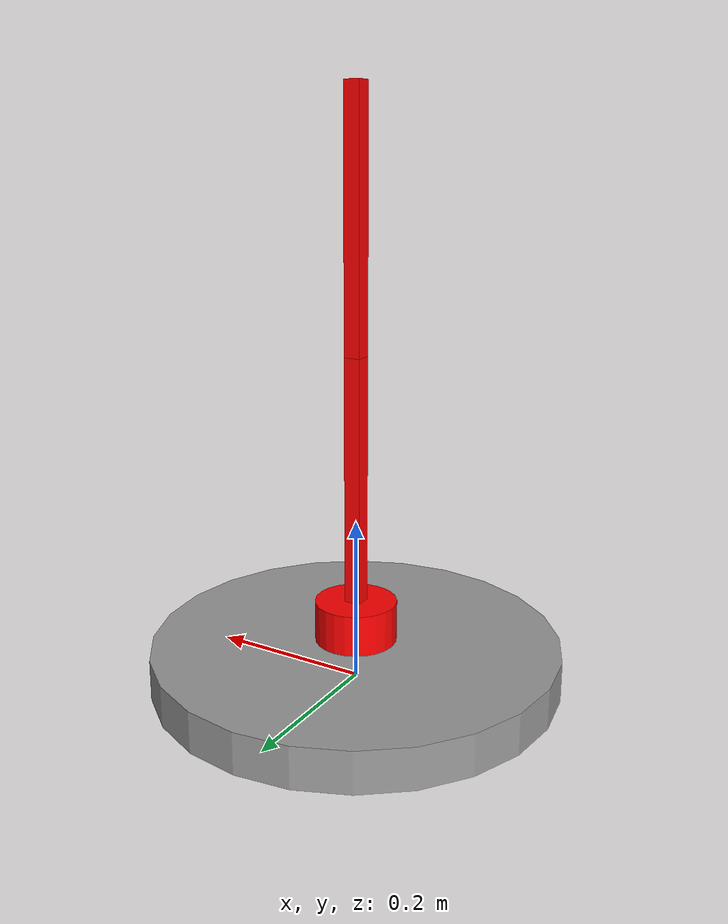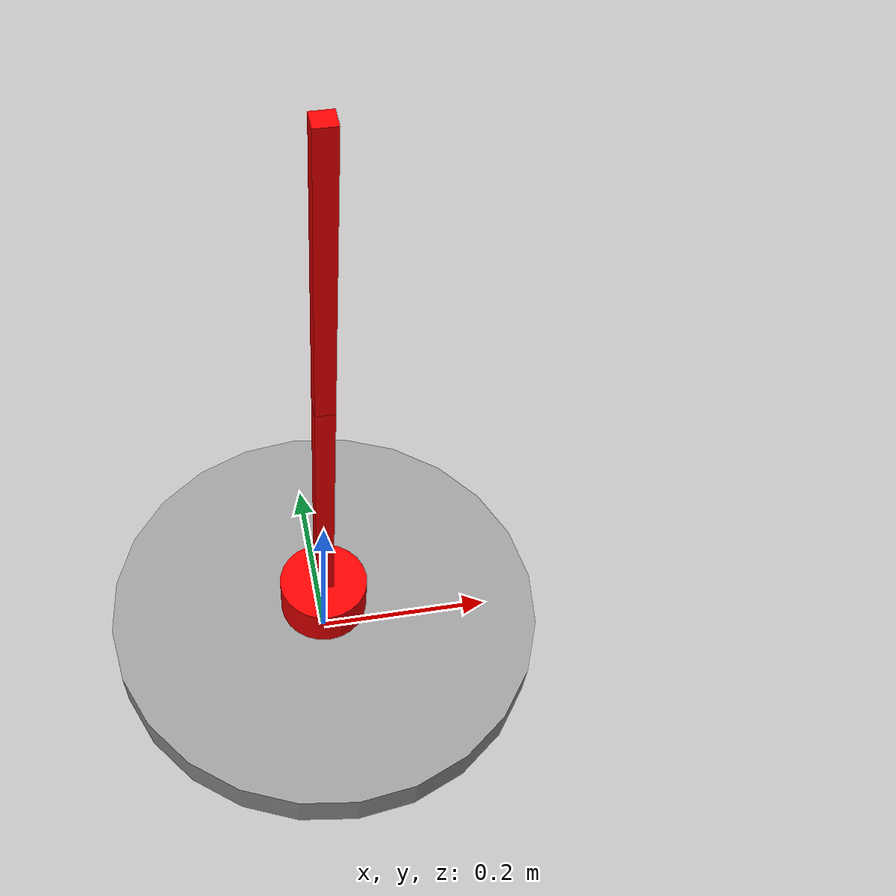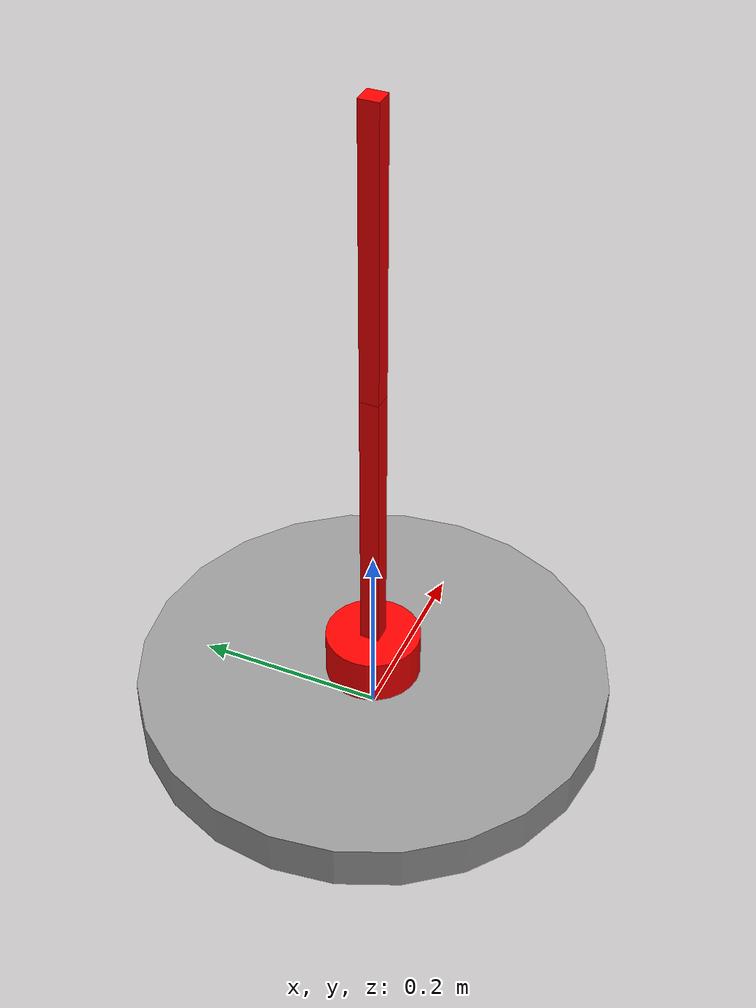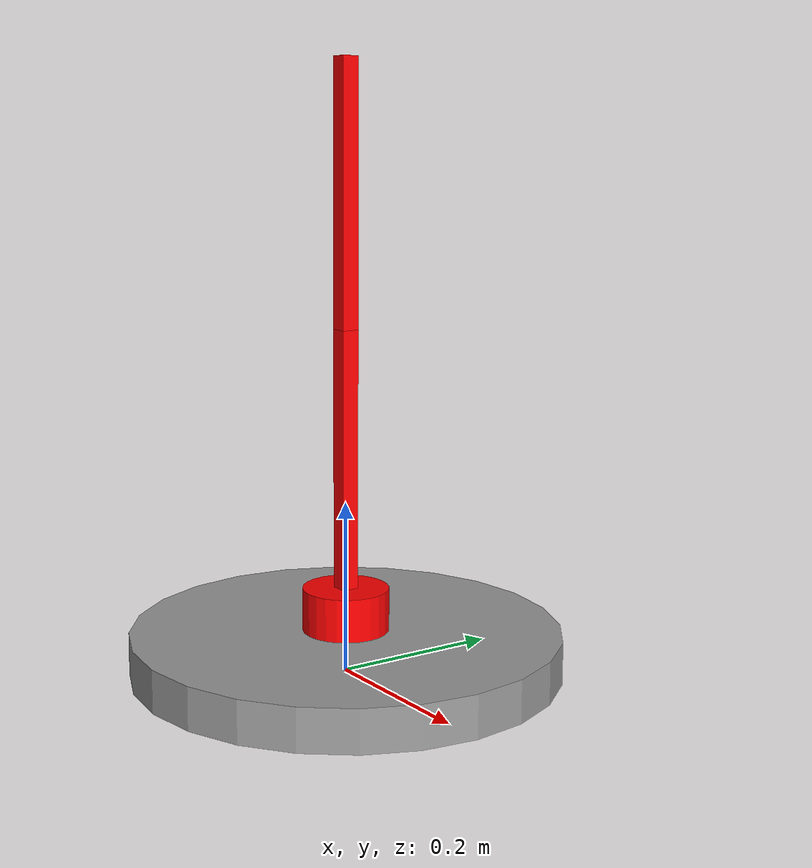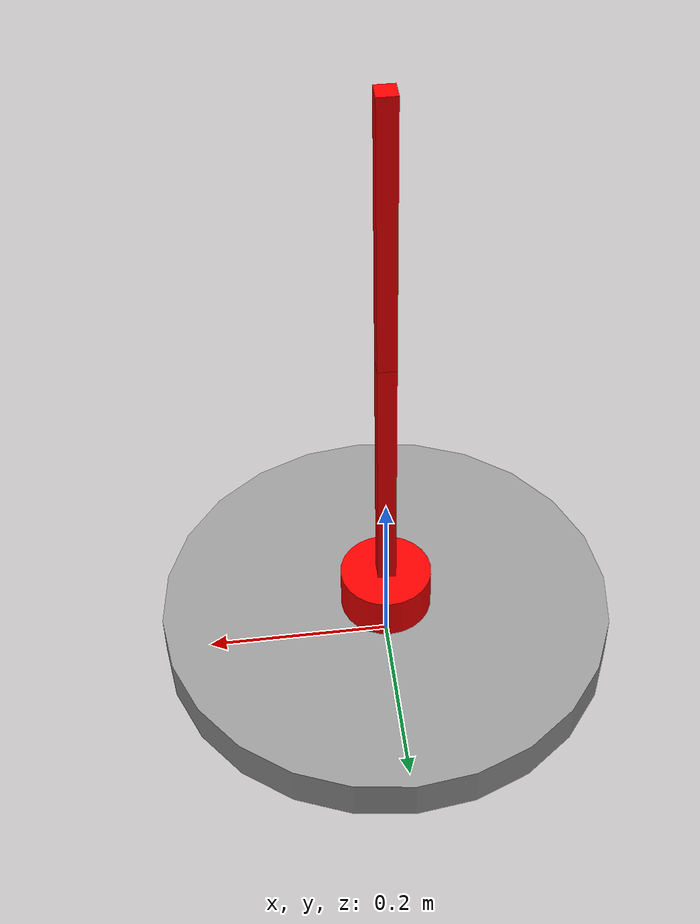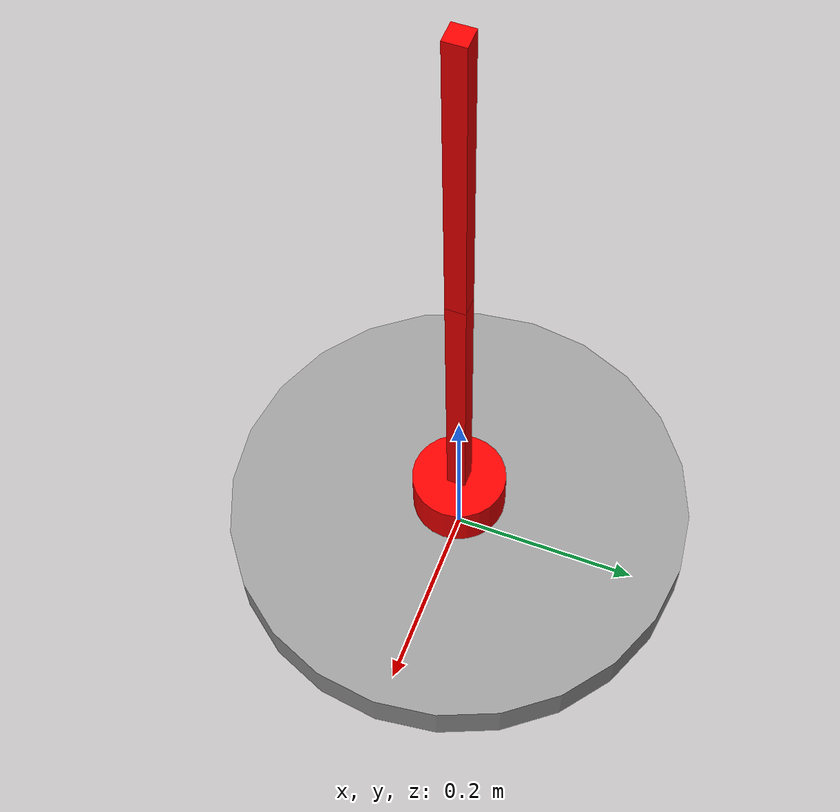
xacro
<?xml version="1.0"?>
<robot name="deliverybot" xmlns:xacro="http://wiki.ros.org/xacro">

    <!-- basic shapes -->
    <xacro:include filename="$(find urdf_basic_shapes)/urdf/basic_shapes.urdf.xacro"/>

    <link name="base_footprint"/>

    <!--cylinder base_link -->
    <xacro:cylinder_shape name="base_link" r="0.25" h="0.05" ori="0 0 .025" rpy="0 0 0" rgb="Grey" m="10" friction="${standard_friction}"/>
    <joint name="base_joint" type="fixed">
        <parent link="base_footprint"/>
        <child link="base_link"/>
        <origin xyz="0 0 0.0" rpy="0 0 0"/>
    </joint>

    <!--cylinder rot_base -->
    <xacro:cylinder_shape name="rot_base" r="0.05" h="0.05" ori="0 0 .025" rpy="0 0 0" rgb="Red" m="1" friction="${standard_friction}"/>
    <joint name="rot_base_joint" type="continuous">
        <parent link="base_link"/>
        <child link="rot_base"/>
        <axis xyz="0 0 1"/>
        <origin xyz="0 0 0.05" rpy="0 0 0"/>
    </joint>

    <!-- cubeical upper_arm -->
    <xacro:cube name="arm1" x="0.02" y="0.02" z="0.3" ori="0.0 0.0 0.15" rpy="0 0 0" rgb="Red" m=".1" friction="${standard_friction}"/>
    <joint name="arm1_joint" type="continuous">
        <parent link="rot_base"/>
        <child link="arm1"/>
        <axis xyz="0 1 0"/>
        <limit lower="0"/>
        <origin xyz="0 0 0.05" rpy="0 0 0"/>
    </joint>

    <!-- cubeical lower_arm -->
    <xacro:cube name="arm2" x="0.02" y="0.02" z="0.3" ori="0.0 0.0 0.15" rpy="0 0 0" rgb="Red" m=".1" friction="${standard_friction}"/>
    <joint name="arm2_joint" type="continuous">
        <parent link="arm1"/>
        <child link="arm2"/>
        <axis xyz="0 1 0"/>
        <origin xyz="0 0 0.3" rpy="0 0 0"/>
    </joint>

</robot>

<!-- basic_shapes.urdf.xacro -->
<robot name="basic_shapes" xmlns:xacro="http://wiki.ros.org/xacro">
  <!-- basic inertia -->
  <xacro:include filename="$(find urdf_basic_shapes)/urdf/inertia.urdf.xacro"/>
  <!-- basic material -->
  <xacro:include filename="$(find urdf_basic_shapes)/urdf/material.urdf.xacro"/>
  <!-- basic shapes gazebo-->
  <xacro:include filename="$(find urdf_basic_shapes)/urdf/basic_shapes.gazebo.xacro"/>

  <!-- constants -->
  <xacro:property name="update_rate" value="50" />

  <xacro:macro name="cube" params="name x y z ori rpy rgb m friction">
    <link name="${name}">
        <visual>
          <origin xyz="${ori}" rpy="${rpy}"/>
          <geometry>
              <box size="${x} ${y} ${z}"/>
          </geometry>
          <material name="${rgb}"/>
        </visual>
        <collision>
        <origin xyz="${ori}" rpy="${rpy}" />
        <geometry>
            <box size="${x} ${y} ${z}" />
        </geometry>
        </collision>
        <xacro:solid_cuboid_inertia m="${m}" h="${y}" d="${z}" w="${x}"/>
    </link>
    <xacro:gazebo_params name="${name}" rgb="${rgb}" friction="${friction}"/>
  </xacro:macro>

  <xacro:macro name="ball" params="name r ori rpy rgb m friction">
    <link name="${name}">
        <visual>
          <origin xyz="${ori}" rpy="${rpy}"/>
          <geometry>
              <sphere radius="${r}"/>
          </geometry>
          <material name="${rgb}"/>
        </visual>
        <collision>
        <origin xyz="${ori}" rpy="${rpy}" />
        <geometry>
            <sphere radius="${r}" />
        </geometry>
        </collision>
        <xacro:solid_sphere_inertia m="${m}" r="${r}"/>
    </link>
    <xacro:gazebo_params name="${name}" rgb="${rgb}" friction="${friction}"/>
  </xacro:macro>

  <xacro:macro name="cylinder_shape" params="name r h ori rpy rgb m friction">
    <link name="${name}">
        <visual>
          <origin xyz="${ori}" rpy="${rpy}"/>
          <geometry>
              <cylinder radius="${r}" length="${h}"/>
          </geometry>
          <material name="${rgb}"/>
        </visual>
        <collision>
        <origin xyz="${ori}" rpy="${rpy}" />
        <geometry>
            <cylinder radius="${r}" length="${h}" />
        </geometry>
        </collision>
        <xacro:solid_cylinder_inertia m="${m}" r="${r}" h="${h}"/>
    </link>
    <xacro:gazebo_params name="${name}" rgb="${rgb}" friction="${friction}"/>
  </xacro:macro>

  <xacro:macro name="wheel" params="name r h ori rpy rgb m friction">
    <link name="${name}">
        <visual>
          <origin xyz="${ori}" rpy="${rpy}"/>
          <geometry>
              <cylinder radius="${r}" length="${h}"/>
          </geometry>
          <material name="${rgb}"/>
        </visual>
        <collision>
        <origin xyz="${ori}" rpy="${rpy}" />
        <geometry>
            <sphere radius="${r}" />   <!--use shpere here to reduce the point of contract to a infinit small point-->
        </geometry>
        </collision>
        <xacro:solid_cylinder_inertia m="${m}" r="${r}" h="${h}"/>
    </link>
    <xacro:gazebo_params name="${name}" rgb="${rgb}" friction="${friction}"/>
  </xacro:macro>

</robot>

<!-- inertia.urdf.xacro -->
<robot xmlns:xacro="http://wiki.ros.org/xacro">
  <!-- source en.wikipedia.org/wiki/List_of_moments_of_inertia-->

  <!-- TODO Solid sphere of radius r and mass m-->
  <xacro:macro name="solid_sphere_inertia" params="m r">
  <inertial>
      <mass value="${m}" />
    <inertia  ixx="${(2*r*r*m)/5}" ixy = "0" ixz = "0"
              iyy="${(2*r*r*m)/5}" iyz = "0"
              izz="${(2*r*r*m)/5}"
     />
     </inertial>
  </xacro:macro>

  <!-- TODO Hollow sphere of radius r and mass m-->
  <xacro:macro name="hollow_sphere_inertia" params="m r">
  <inertial>
      <mass value="${m}" />
    <inertia  ixx="${(2*r*r*m)/3}" ixy = "0" ixz = "0"
              iyy="${(2*r*r*m)/3}" iyz = "0"
              izz="${(2*r*r*m)/3}"
     />
     </inertial>
  </xacro:macro>

  <!-- TODO Solid ellipsoid of semi-axes a, b, c and mass m-->
  <xacro:macro name="ellipsoid_semi_axes_inertia" params="a b c m r">
  <inertial>
      <mass value="${m}" />
    <inertia  ixx="${(m*(b*b+c*c))/5}" ixy = "0" ixz = "0"
              iyy="${(m*(a*a+c*c))/5}" iyz = "0"
              izz="${(m*(a*a+b*b))/5}"
     />
     </inertial>
  </xacro:macro>

  <!-- TODO Right circular cone with radius r, height h and mass m, about the apex -->
  <xacro:macro name="right_circular_cone_inertia" params="m r h">
  <inertial>
      <mass value="${m}" />
    <inertia  ixx="${((3*m*(h*h))/5)+((3*m*(r*r))/20)}" ixy = "0" ixz = "0"
              iyy="${((3*m*(h*h))/5)+((3*m*(r*r))/20)}" iyz = "0"
              izz="${(3*m*(r*r))/10}"
     />
     </inertial>
  </xacro:macro>

  <!-- TODO Solid cuboid of width w, height h, depth d, and mass m -->
  <!-- yes, axis in solid_cuboid_inertia are changed, w relates to X axis, d to Z axis, and h to Y axis -->
  <!-- Keep this comment -->
  <xacro:macro name="solid_cuboid_inertia" params="m h d w">
    <inertial>
      <mass value="${m}" />
        <inertia  ixx="${(m*(h*h+d*d))/12}" ixy = "0" ixz = "0"
                iyy="${(m*(w*w+d*d))/12}" iyz = "0"
                izz="${(m*(w*w+h*h))/12}"
        />
    </inertial>
  </xacro:macro>

  <!-- TODO Solid cylinder of radius r, height h and mass m -->
  <xacro:macro name="solid_cylinder_inertia" params="m r h">
  <inertial>
      <mass value="${m}" />
    <inertia  ixx="${m*(3*r*r+h*h)/12}" ixy = "0" ixz = "0"
              iyy="${m*(3*r*r+h*h)/12}" iyz = "0"
              izz="${m*r*r/2}"
     />
     </inertial>
  </xacro:macro>

    <!-- TODO Thick-walled cylindrical tube with open ends, of inner radius r1, outer radius r2, length h and mass m -->
    <xacro:macro name="thick_walled_cylinder_inertia" params="m r1 r2 h">
    <inertial>
      <mass value="${m}" />
    <inertia  ixx="${m*((3*(r1*r1+r2*r2))+(h*h))/12}" ixy = "0" ixz = "0"
              iyy="${m*((3*(r1*r1+r2*r2))+(h*h))/12}" iyz = "0"
              izz="${m*(r1*r1+r2*r2)/2}"
     />
     </inertial>
  </xacro:macro>

</robot>

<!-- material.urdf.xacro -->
<robot xmlns:xacro="http://wiki.ros.org/xacro">

  <material name="Red">
    <color rgba="1 0 0 1"/>
  </material>
  <material name="Green">
    <color rgba="0 1 0 1"/>
  </material>
  <material name="Blue">
    <color rgba="0 0 0.8 1"/>
  </material>
  <material name="Black">
    <color rgba="0 0 0 1"/>
  </material>
  <material name="White">
    <color rgba="1 1 1 1"/>
  </material>
  <material name="Gray">
    <color rgba="0.8 0.8 0.8 1"/>
  </material>
  <material name="Yellow">
    <color rgba="1 1 0 1"/>
  </material>
  <material name="Orange">
    <color rgba="1 0.5 0 1"/>
  </material>
  <material name="Brown">
    <color rgba="0.6 0.4 0.2 1"/>
  </material>
  <material name="Purple">
    <color rgba="0.5 0 0.5 1"/>
  </material>
  <material name="Cyan">
    <color rgba="0 1 1 1"/>
  </material>

</robot>

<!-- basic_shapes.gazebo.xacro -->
<robot name="basic_shapes"
  xmlns:xacro="http://www.ros.org/wiki/xacro">
  <xacro:arg name="laser_visual" default="true"/>

  <xacro:property name="update_rate" value="10" />

  <xacro:property name="standard_friction" value="0.2" />
  <xacro:property name="wheel_friction" value="10000.0" />
  <xacro:property name="sliding_friction" value="0.1" />

  <xacro:macro name="gazebo_params" params="name rgb friction">
    <gazebo reference="${name}">
      <material>Gazebo/${rgb}</material>
      <mu1>${friction}</mu1>
      <mu2>${friction}</mu2>
      <kp value="10000000.0" />
      <kd value="1.0" />
      <minDepth>0.001</minDepth>
      <maxVel>0.1</maxVel>
      <fdir1>1 0 0</fdir1>
    </gazebo>
  </xacro:macro>

  <!-- Gazebo plugin for ROS Control -->

</robot>
